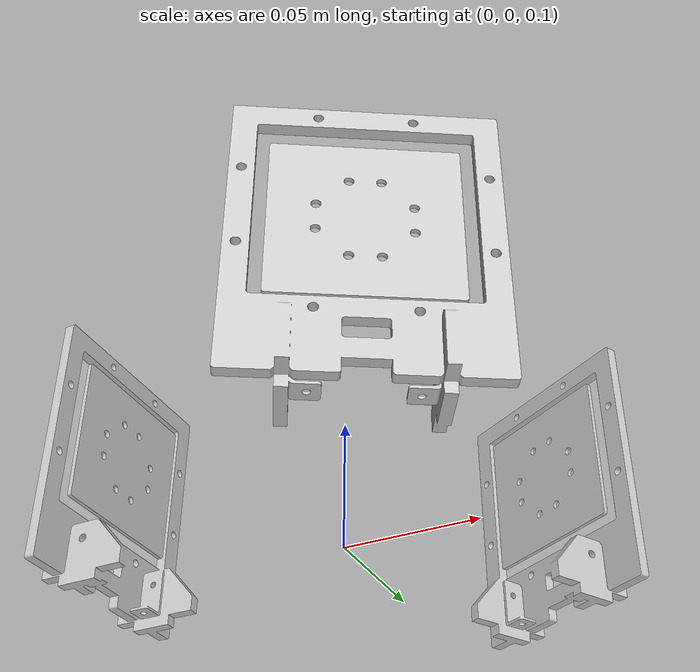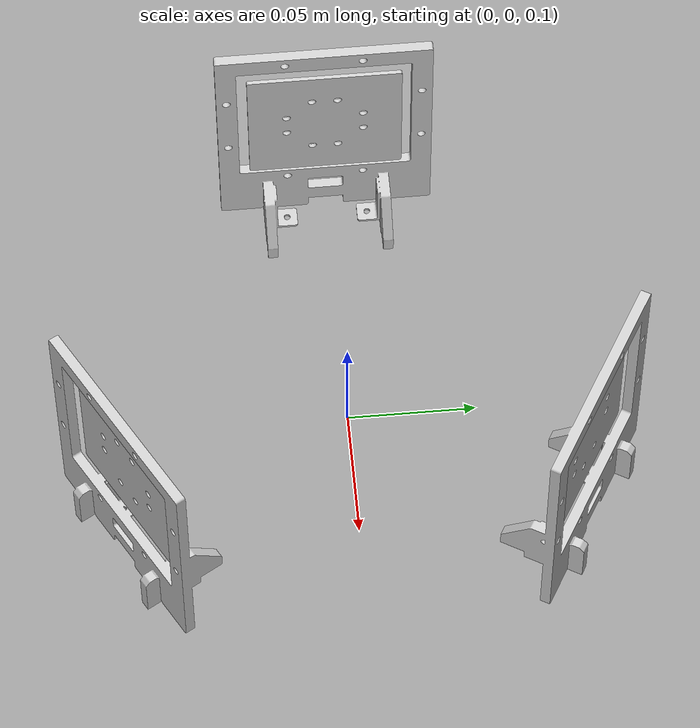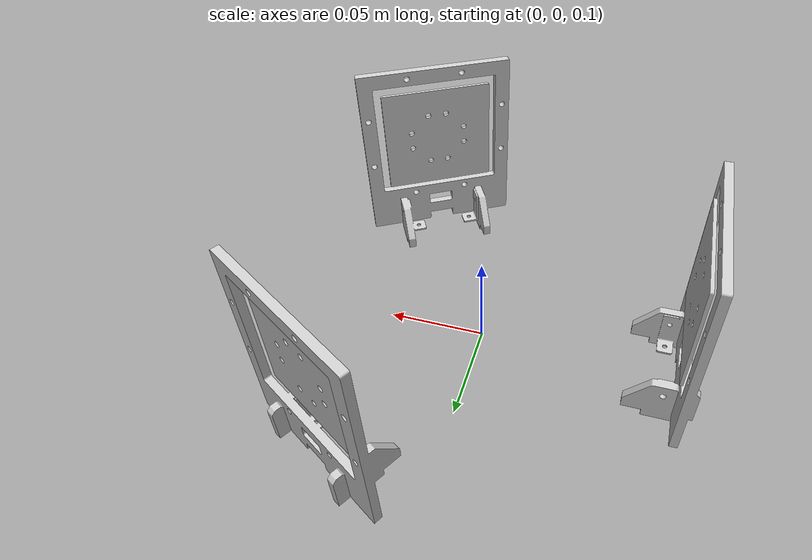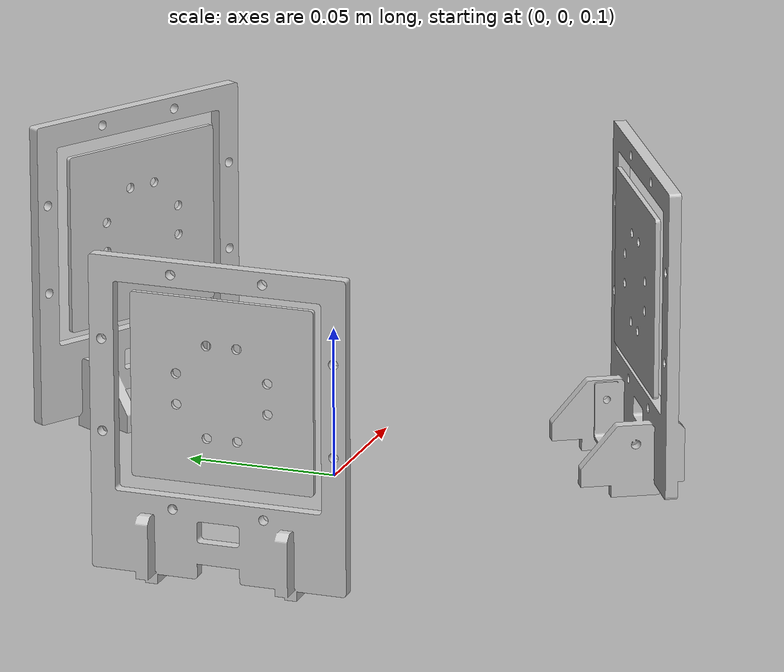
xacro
<?xml version="1.0"?>
<robot name="my_robo" xmlns:xacro="http://ros.org/wiki/xacro">
  <xacro:include filename="$(find s4_hitsensor)/urdf/common.urdf.xacro"/>
  <xacro:include filename="$(find s4_hitsensor)/urdf/s4_hitsensor.urdf.xacro"/>

  <link name="world"/>
  <link name="robot0/base_link"/>
  <joint name="robot0/base_joint" type="fixed">
    <parent link="world"/>
    <child link="robot0/base_link"/>
  </joint>

  <xacro:s4_hitsensor prefix="robot0/hitsensor0" parent="robot0/base_link" radius="0.1" height="0.1" />

  <!-- ===============  Gazebo =============== -->
  <gazebo>
    <plugin name="gazebo_ros_control" filename="libgazebo_ros_control.so">
      <robotNamespace>my_robo</robotNamespace>
    </plugin>
  </gazebo>

</robot>

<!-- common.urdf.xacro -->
<robot xmlns:xacro="http://ros.org/wiki/xacro">
  <xacro:macro name="pi" params="3.1415926535897931" />
  <material name="gray">
    <color rgba="0.8 0.8 0.8 2.5"/>
  </material>
  <material name="black">
    <color rgba="0 0 0 2.5"/>
  </material>
  <material name="white">
    <color rgba="1.0 1.0 1.0 2.5"/>
  </material>
  <material name="red">
    <color rgba="1.0 0 0 2.5"/>
  </material>
  <material name="light_red">
    <color rgba="1.0 0.5 0.5 2.5"/>
  </material>
  <material name="green">
    <color rgba="0 1.0 0 2.5"/>
  </material>
  <material name="dark_green">
    <color rgba="0 0.5 0 2.5"/>
  </material>
  <material name="blue">
    <color rgba="0 0 1.0 2.5"/>
  </material>
  <material name="wood">
    <color rgba="0.9 0.9 0.5 2.5"/>
  </material>
</robot>

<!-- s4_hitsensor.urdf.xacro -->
<robot xmlns:xacro="http://ros.org/wiki/xacro">
  <xacro:macro name="s4_target" params="prefix parent xyz rpy">
    <link name="${prefix}/frame_link">
      <visual>
        <origin xyz="0 0 0" rpy="0 0 0"/>
        <geometry>
          <mesh filename="package://s4_hitsensor/stl/target_frame.stl" />
        </geometry>
        <material name="gray"/>
      </visual>
    </link>
    <joint name="${prefix}/frame_joint" type="fixed"><!--floating-->
      <parent link="${parent}"/>
      <child  link="${prefix}/frame_link"/>
      <origin rpy="${rpy}" xyz="${xyz}"/>
    </joint>

    <link name="${prefix}/plate_link">
      <visual>
        <origin xyz="0 0 0" rpy="0 0 0"/>
        <geometry>
          <mesh filename="package://s4_hitsensor/stl/target_plate.stl" />
        </geometry>
        <material name="gray"/>
      </visual>
    </link>
    <joint name="${prefix}/plate_joint" type="fixed"><!--floating-->
      <parent link="${prefix}/frame_link"/>
      <child  link="${prefix}/plate_link"/>
      <origin rpy="0 0 0" xyz="0 0 0.06"/>
    </joint>
  </xacro:macro>

  <xacro:macro name="s4_hitsensor" params="prefix parent radius height">
    <xacro:s4_target  prefix="${prefix}/target0" parent="${parent}" xyz="${radius*cos(pi/3)}   ${radius*sin(pi/3)} ${height}"   rpy="0 0 ${pi/3}" />
    <xacro:s4_target  prefix="${prefix}/target1" parent="${parent}" xyz="${radius*cos(pi)}     ${radius*sin(pi)} ${height}"     rpy="0 0 ${pi}" />
    <xacro:s4_target  prefix="${prefix}/target2" parent="${parent}" xyz="${radius*cos(5*pi/3)} ${radius*sin(5*pi/3)} ${height}" rpy="0 0 ${5*pi/3}" />
  </xacro:macro>
</robot>
